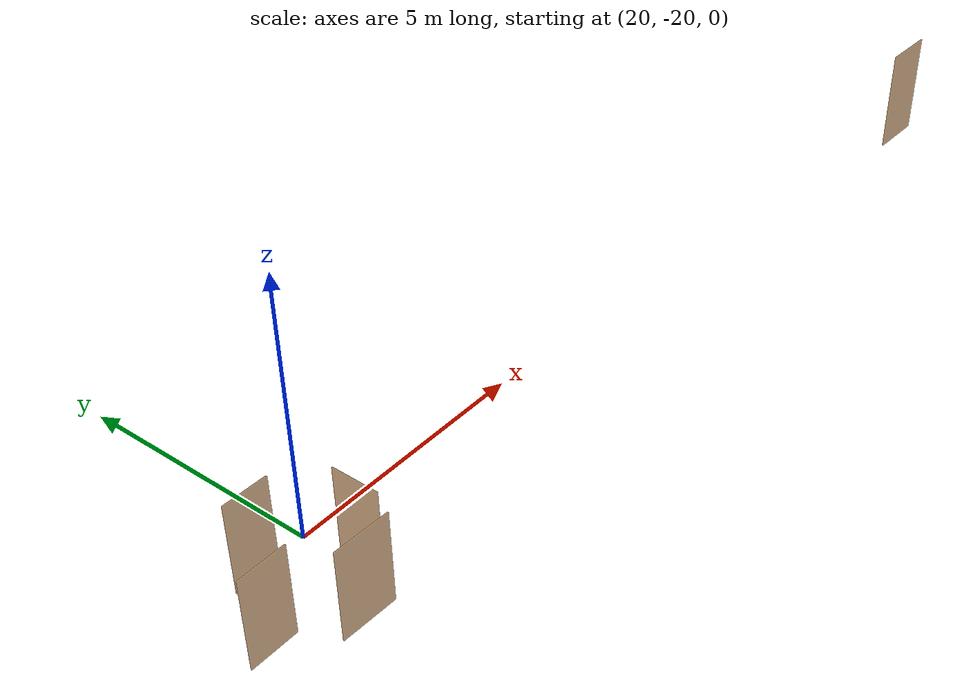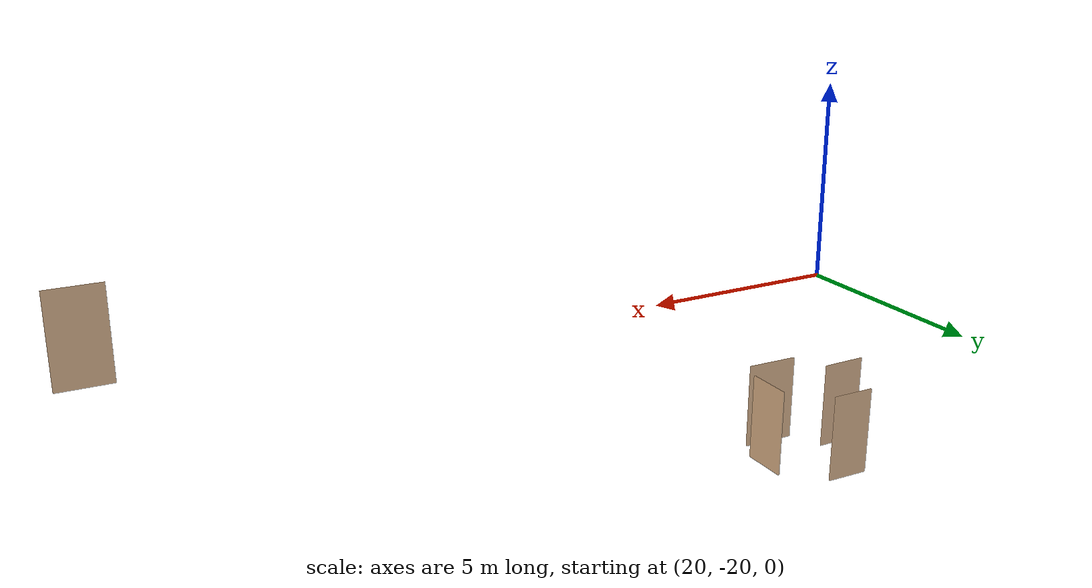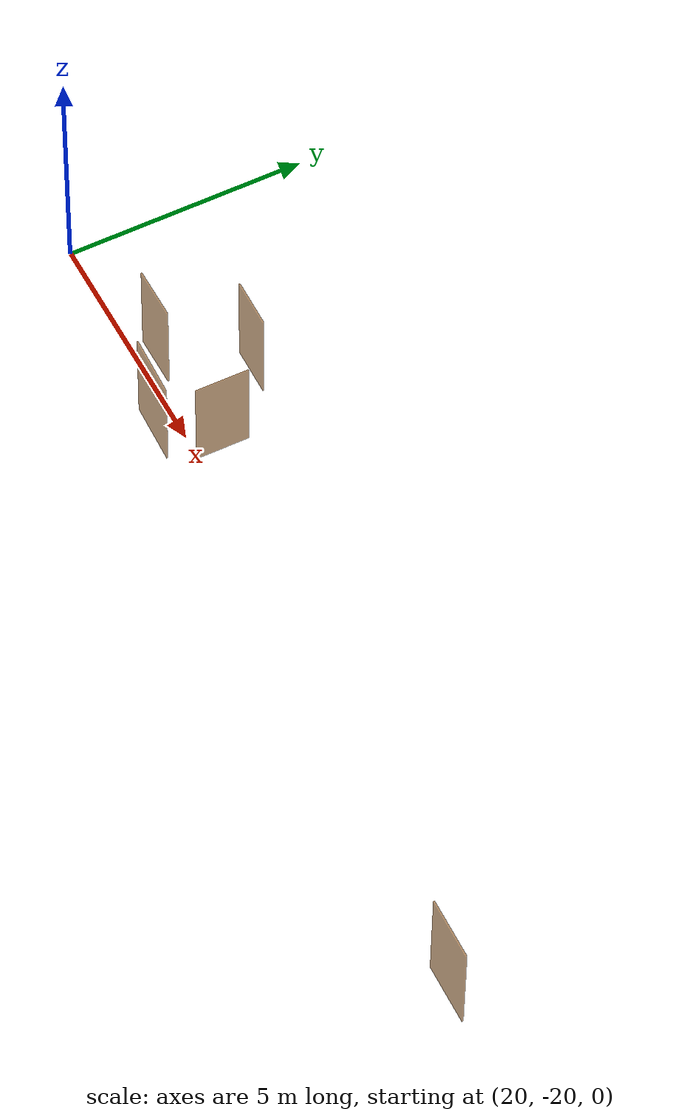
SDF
<sdf version="1.7">
 <world name="sim_world">
  <model name="puertaB5">
   <pose>38.01422265354484 -21.382527665628672 0.0 0 0 3.117840569362342</pose>
   <link name="right">
    <pose>0 0 1.11 0 0 0</pose>
    <visual name="right_visual">
     <geometry><box><size>1.2396752796384625 0.03 2.2</size></box></geometry>
     <material>
      <ambient>0.5 0.25 0 0.6</ambient>
      <diffuse>0.5 0.25 0 0.6</diffuse>
      <pbr><metal><metalness>0.0</metalness></metal></pbr>
     </material>
    </visual>
    <collision name="right_collision">
     <geometry><box><size>1.2396752796384625 0.03 2.2</size></box></geometry>
     <surface><contact><collide_bitmask>0x02</collide_bitmask></contact></surface>
    </collision>
    <inertial>
     <mass>50.0</mass>
     <inertia><ixx>20.17041666666667</ixx><iyy>26.56997832894459</iyy><izz>6.4070616622779175</izz></inertia>
    </inertial>
   </link>
   <joint name="right_joint" type="revolute">
    <parent>world</parent>
    <child>right</child>
    <axis><xyz>0 0 1</xyz><limit><lower>0</lower><upper>1.57</upper></limit></axis>
    <pose>0.6248376398192312 0 0 0 0 0</pose>
   </joint>
   <plugin name="register_component" filename="libregister_component.so">
    <component name="Door">
     <v_max_door>0.5</v_max_door>
     <a_max_door>0.3</a_max_door>
     <a_nom_door>0.15</a_nom_door>
     <dx_min_door>0.01</dx_min_door>
     <f_max_door>500.0</f_max_door>
     <ros_interface>true</ros_interface>
     <door name="puertaB5" type="SwingDoor" left_joint_name="empty_joint" right_joint_name="right_joint"/>
    </component>
   </plugin>
  </model>
  <model name="prueta-s6">
   <pose>20.335089202178093 -18.383923782290463 -4.0 0 0 0.00044923060630432403</pose>
   <link name="right">
    <pose>0 0 1.11 0 0 0</pose>
    <visual name="right_visual">
     <geometry><box><size>1.1439802537445727 0.03 2.2</size></box></geometry>
     <material>
      <ambient>0.5 0.25 0 0.6</ambient>
      <diffuse>0.5 0.25 0 0.6</diffuse>
      <pbr><metal><metalness>0.0</metalness></metal></pbr>
     </material>
    </visual>
    <collision name="right_collision">
     <geometry><box><size>1.1439802537445727 0.03 2.2</size></box></geometry>
     <surface><contact><collide_bitmask>0x02</collide_bitmask></contact></surface>
    </collision>
    <inertial>
     <mass>50.0</mass>
     <inertia><ixx>20.17041666666667</ixx><iyy>25.61954508732291</iyy><izz>5.456628420656237</izz></inertia>
    </inertial>
   </link>
   <joint name="right_joint" type="revolute">
    <parent>world</parent>
    <child>right</child>
    <axis><xyz>0 0 1</xyz><limit><lower>0</lower><upper>1.57</upper></limit></axis>
    <pose>0.5769901268722863 0 0 0 0 0</pose>
   </joint>
   <plugin name="register_component" filename="libregister_component.so">
    <component name="Door">
     <v_max_door>0.5</v_max_door>
     <a_max_door>0.3</a_max_door>
     <a_nom_door>0.15</a_nom_door>
     <dx_min_door>0.01</dx_min_door>
     <f_max_door>500.0</f_max_door>
     <ros_interface>true</ros_interface>
     <door name="prueta-s6" type="SwingDoor" left_joint_name="empty_joint" right_joint_name="right_joint"/>
    </component>
   </plugin>
  </model>
  <model name="prueta-s9">
   <pose>21.932421132151227 -19.23533883307018 -4.0 0 0 3.1057464408848157</pose>
   <link name="right">
    <pose>0 0 1.11 0 0 0</pose>
    <visual name="right_visual">
     <geometry><box><size>1.3431124294630568 0.03 2.2</size></box></geometry>
     <material>
      <ambient>0.5 0.25 0 0.6</ambient>
      <diffuse>0.5 0.25 0 0.6</diffuse>
      <pbr><metal><metalness>0.0</metalness></metal></pbr>
     </material>
    </visual>
    <collision name="right_collision">
     <geometry><box><size>1.3431124294630568 0.03 2.2</size></box></geometry>
     <surface><contact><collide_bitmask>0x02</collide_bitmask></contact></surface>
    </collision>
    <inertial>
     <mass>50.0</mass>
     <inertia><ixx>20.17041666666667</ixx><iyy>27.68312915907565</iyy><izz>7.5202124924089775</izz></inertia>
    </inertial>
   </link>
   <joint name="right_joint" type="revolute">
    <parent>world</parent>
    <child>right</child>
    <axis><xyz>0 0 1</xyz><limit><lower>0</lower><upper>1.57</upper></limit></axis>
    <pose>0.6765562147315284 0 0 0 0 0</pose>
   </joint>
   <plugin name="register_component" filename="libregister_component.so">
    <component name="Door">
     <v_max_door>0.5</v_max_door>
     <a_max_door>0.3</a_max_door>
     <a_nom_door>0.15</a_nom_door>
     <dx_min_door>0.01</dx_min_door>
     <f_max_door>500.0</f_max_door>
     <ros_interface>true</ros_interface>
     <door name="prueta-s9" type="SwingDoor" left_joint_name="empty_joint" right_joint_name="right_joint"/>
    </component>
   </plugin>
  </model>
  <model name="prueta-s7">
   <pose>21.431457802256155 -16.790544127785083 -4.0 0 0 3.12053357353771</pose>
   <link name="right">
    <pose>0 0 1.11 0 0 0</pose>
    <visual name="right_visual">
     <geometry><box><size>1.0838990476852095 0.03 2.2</size></box></geometry>
     <material>
      <ambient>0.5 0.25 0 0.6</ambient>
      <diffuse>0.5 0.25 0 0.6</diffuse>
      <pbr><metal><metalness>0.0</metalness></metal></pbr>
     </material>
    </visual>
    <collision name="right_collision">
     <geometry><box><size>1.0838990476852095 0.03 2.2</size></box></geometry>
     <surface><contact><collide_bitmask>0x02</collide_bitmask></contact></surface>
    </collision>
    <inertial>
     <mass>50.0</mass>
     <inertia><ixx>20.17041666666667</ixx><iyy>25.061821439887105</iyy><izz>4.898904773220433</izz></inertia>
    </inertial>
   </link>
   <joint name="right_joint" type="revolute">
    <parent>world</parent>
    <child>right</child>
    <axis><xyz>0 0 1</xyz><limit><lower>0</lower><upper>1.57</upper></limit></axis>
    <pose>0.5469495238426048 0 0 0 0 0</pose>
   </joint>
   <plugin name="register_component" filename="libregister_component.so">
    <component name="Door">
     <v_max_door>0.5</v_max_door>
     <a_max_door>0.3</a_max_door>
     <a_nom_door>0.15</a_nom_door>
     <dx_min_door>0.01</dx_min_door>
     <f_max_door>500.0</f_max_door>
     <ros_interface>true</ros_interface>
     <door name="prueta-s7" type="SwingDoor" left_joint_name="empty_joint" right_joint_name="right_joint"/>
    </component>
   </plugin>
  </model>
  <model name="prueta-s8">
   <pose>22.87560166956552 -18.17167159183514 -4.0 0 0 -1.5754039942402178</pose>
   <link name="right">
    <pose>0 0 1.11 0 0 0</pose>
    <visual name="right_visual">
     <geometry><box><size>1.154239240255232 0.03 2.2</size></box></geometry>
     <material>
      <ambient>0.5 0.25 0 0.6</ambient>
      <diffuse>0.5 0.25 0 0.6</diffuse>
      <pbr><metal><metalness>0.0</metalness></metal></pbr>
     </material>
    </visual>
    <collision name="right_collision">
     <geometry><box><size>1.154239240255232 0.03 2.2</size></box></geometry>
     <surface><contact><collide_bitmask>0x02</collide_bitmask></contact></surface>
    </collision>
    <inertial>
     <mass>50.0</mass>
     <inertia><ixx>20.17041666666667</ixx><iyy>25.717784265604067</iyy><izz>5.5548675989373955</izz></inertia>
    </inertial>
   </link>
   <joint name="right_joint" type="revolute">
    <parent>world</parent>
    <child>right</child>
    <axis><xyz>0 0 -1</xyz><limit><lower>0</lower><upper>1.57</upper></limit></axis>
    <pose>0.582119620127616 0 0 0 0 0</pose>
   </joint>
   <plugin name="register_component" filename="libregister_component.so">
    <component name="Door">
     <v_max_door>0.5</v_max_door>
     <a_max_door>0.3</a_max_door>
     <a_nom_door>0.15</a_nom_door>
     <dx_min_door>0.01</dx_min_door>
     <f_max_door>500.0</f_max_door>
     <ros_interface>true</ros_interface>
     <door name="prueta-s8" type="SwingDoor" left_joint_name="empty_joint" right_joint_name="right_joint"/>
    </component>
   </plugin>
  </model>
 </world>
</sdf>
